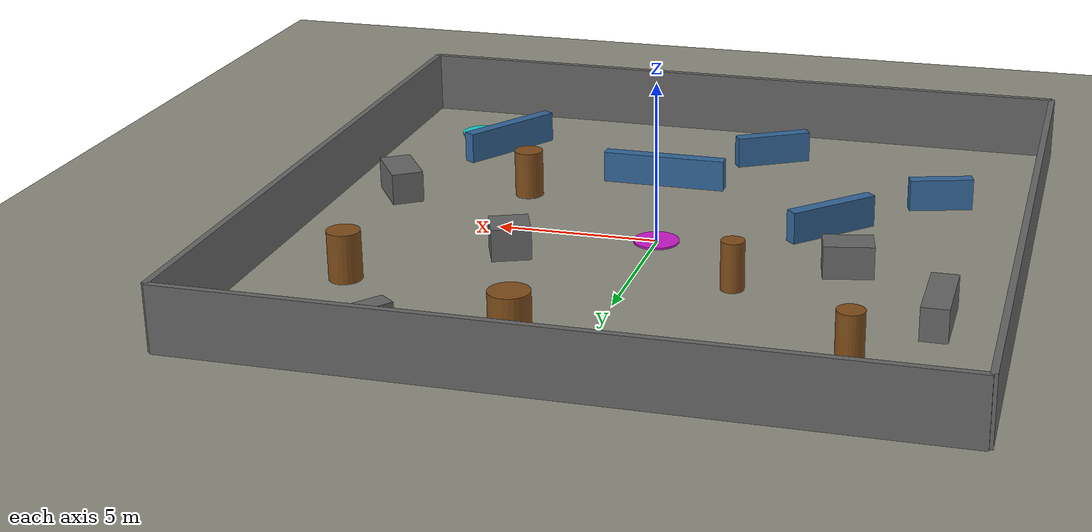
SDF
<?xml version="1.0" ?>
<sdf version="1.6">
  <world name="open_exploration">

    <physics name="default_physics" type="ode">
      <max_step_size>0.001</max_step_size>
      <real_time_factor>1</real_time_factor>
      <real_time_update_rate>1000</real_time_update_rate>
    </physics>

    <gravity>0 0 -9.8</gravity>

    <light name="sun" type="directional">
      <cast_shadows>true</cast_shadows>
      <pose>0 0 20 0 0 0</pose>
      <diffuse>0.85 0.85 0.85 1</diffuse>
      <specular>0.2 0.2 0.2 1</specular>
      <direction>-0.4 0.2 -0.9</direction>
    </light>

    <!-- Suelo -->
    <model name="ground_plane">
      <static>true</static>
      <link name="link">
        <collision name="collision">
          <geometry><plane><normal>0 0 1</normal><size>35 35</size></plane></geometry>
        </collision>
        <visual name="visual">
          <geometry><plane><normal>0 0 1</normal><size>35 35</size></plane></geometry>
          <material><ambient>0.55 0.55 0.5 1</ambient><diffuse>0.55 0.55 0.5 1</diffuse></material>
        </visual>
      </link>
    </model>

    <!-- PERÍMETRO EXTERIOR (22m x 22m)                                -->

    <model name="border_n"><static>true</static><pose>0 11 1 0 0 0</pose>
      <link name="link">
        <collision name="collision"><geometry><box><size>22 0.2 2</size></box></geometry></collision>
        <visual name="visual"><geometry><box><size>22 0.2 2</size></box></geometry>
          <material><ambient>0.4 0.4 0.4 1</ambient><diffuse>0.4 0.4 0.4 1</diffuse></material>
        </visual>
      </link>
    </model>
    <model name="border_s"><static>true</static><pose>0 -11 1 0 0 0</pose>
      <link name="link">
        <collision name="collision"><geometry><box><size>22 0.2 2</size></box></geometry></collision>
        <visual name="visual"><geometry><box><size>22 0.2 2</size></box></geometry>
          <material><ambient>0.4 0.4 0.4 1</ambient><diffuse>0.4 0.4 0.4 1</diffuse></material>
        </visual>
      </link>
    </model>
    <model name="border_e"><static>true</static><pose>11 0 1 0 0 0</pose>
      <link name="link">
        <collision name="collision"><geometry><box><size>0.2 22 2</size></box></geometry></collision>
        <visual name="visual"><geometry><box><size>0.2 22 2</size></box></geometry>
          <material><ambient>0.4 0.4 0.4 1</ambient><diffuse>0.4 0.4 0.4 1</diffuse></material>
        </visual>
      </link>
    </model>
    <model name="border_w"><static>true</static><pose>-11 0 1 0 0 0</pose>
      <link name="link">
        <collision name="collision"><geometry><box><size>0.2 22 2</size></box></geometry></collision>
        <visual name="visual"><geometry><box><size>0.2 22 2</size></box></geometry>
          <material><ambient>0.4 0.4 0.4 1</ambient><diffuse>0.4 0.4 0.4 1</diffuse></material>
        </visual>
      </link>
    </model>

    <!-- OBSTÁCULOS DISPERSOS (15 obstáculos variados)                 -->
    <!-- Mezcla de cilindros (columnas) y cajas (muros cortos)         -->

    <!-- Cilindros (columnas) -->
    <model name="cyl_1"><static>true</static><pose>-7 7 0.75 0 0 0</pose>
      <link name="link">
        <collision name="collision"><geometry><cylinder><radius>0.4</radius><length>1.5</length></cylinder></geometry></collision>
        <visual name="visual"><geometry><cylinder><radius>0.4</radius><length>1.5</length></cylinder></geometry>
          <material><ambient>0.5 0.3 0.1 1</ambient><diffuse>0.5 0.3 0.1 1</diffuse></material>
        </visual>
      </link>
    </model>

    <model name="cyl_2"><static>true</static><pose>2 8 0.75 0 0 0</pose>
      <link name="link">
        <collision name="collision"><geometry><cylinder><radius>0.6</radius><length>1.5</length></cylinder></geometry></collision>
        <visual name="visual"><geometry><cylinder><radius>0.6</radius><length>1.5</length></cylinder></geometry>
          <material><ambient>0.5 0.3 0.1 1</ambient><diffuse>0.5 0.3 0.1 1</diffuse></material>
        </visual>
      </link>
    </model>

    <model name="cyl_3"><static>true</static><pose>8 5 0.75 0 0 0</pose>
      <link name="link">
        <collision name="collision"><geometry><cylinder><radius>0.5</radius><length>1.5</length></cylinder></geometry></collision>
        <visual name="visual"><geometry><cylinder><radius>0.5</radius><length>1.5</length></cylinder></geometry>
          <material><ambient>0.5 0.3 0.1 1</ambient><diffuse>0.5 0.3 0.1 1</diffuse></material>
        </visual>
      </link>
    </model>

    <model name="cyl_4"><static>true</static><pose>-3 3 0.75 0 0 0</pose>
      <link name="link">
        <collision name="collision"><geometry><cylinder><radius>0.35</radius><length>1.5</length></cylinder></geometry></collision>
        <visual name="visual"><geometry><cylinder><radius>0.35</radius><length>1.5</length></cylinder></geometry>
          <material><ambient>0.5 0.3 0.1 1</ambient><diffuse>0.5 0.3 0.1 1</diffuse></material>
        </visual>
      </link>
    </model>

    <model name="cyl_5"><static>true</static><pose>5 -3 0.75 0 0 0</pose>
      <link name="link">
        <collision name="collision"><geometry><cylinder><radius>0.45</radius><length>1.5</length></cylinder></geometry></collision>
        <visual name="visual"><geometry><cylinder><radius>0.45</radius><length>1.5</length></cylinder></geometry>
          <material><ambient>0.5 0.3 0.1 1</ambient><diffuse>0.5 0.3 0.1 1</diffuse></material>
        </visual>
      </link>
    </model>

    <!-- Muros cortos (cajas alargadas en distintos ángulos) -->
    <model name="box_1"><static>true</static><pose>-5 -2 0.5 0 0 0.785</pose>
      <link name="link">
        <collision name="collision"><geometry><box><size>3 0.4 1</size></box></geometry></collision>
        <visual name="visual"><geometry><box><size>3 0.4 1</size></box></geometry>
          <material><ambient>0.2 0.4 0.6 1</ambient><diffuse>0.2 0.4 0.6 1</diffuse></material>
        </visual>
      </link>
    </model>

    <model name="box_2"><static>true</static><pose>1 -5 0.5 0 0 0</pose>
      <link name="link">
        <collision name="collision"><geometry><box><size>4 0.4 1</size></box></geometry></collision>
        <visual name="visual"><geometry><box><size>4 0.4 1</size></box></geometry>
          <material><ambient>0.2 0.4 0.6 1</ambient><diffuse>0.2 0.4 0.6 1</diffuse></material>
        </visual>
      </link>
    </model>

    <model name="box_3"><static>true</static><pose>-8 -5 0.5 0 0 0.3</pose>
      <link name="link">
        <collision name="collision"><geometry><box><size>2 0.4 1</size></box></geometry></collision>
        <visual name="visual"><geometry><box><size>2 0.4 1</size></box></geometry>
          <material><ambient>0.2 0.4 0.6 1</ambient><diffuse>0.2 0.4 0.6 1</diffuse></material>
        </visual>
      </link>
    </model>

    <model name="box_4"><static>true</static><pose>7 -7 0.5 0 0 1.0</pose>
      <link name="link">
        <collision name="collision"><geometry><box><size>3.5 0.4 1</size></box></geometry></collision>
        <visual name="visual"><geometry><box><size>3.5 0.4 1</size></box></geometry>
          <material><ambient>0.2 0.4 0.6 1</ambient><diffuse>0.2 0.4 0.6 1</diffuse></material>
        </visual>
      </link>
    </model>

    <model name="box_5"><static>true</static><pose>-2 -8 0.5 0 0 0.523</pose>
      <link name="link">
        <collision name="collision"><geometry><box><size>2.5 0.4 1</size></box></geometry></collision>
        <visual name="visual"><geometry><box><size>2.5 0.4 1</size></box></geometry>
          <material><ambient>0.2 0.4 0.6 1</ambient><diffuse>0.2 0.4 0.6 1</diffuse></material>
        </visual>
      </link>
    </model>

    <!-- Bloques cuadrados (obstacles tipo roca) -->
    <model name="block_1"><static>true</static><pose>4 2 0.5 0 0 0.4</pose>
      <link name="link">
        <collision name="collision"><geometry><box><size>1.2 1.2 1</size></box></geometry></collision>
        <visual name="visual"><geometry><box><size>1.2 1.2 1</size></box></geometry>
          <material><ambient>0.4 0.4 0.4 1</ambient><diffuse>0.4 0.4 0.4 1</diffuse></material>
        </visual>
      </link>
    </model>

    <model name="block_2"><static>true</static><pose>-6 1 0.5 0 0 0.2</pose>
      <link name="link">
        <collision name="collision"><geometry><box><size>1.5 1 1</size></box></geometry></collision>
        <visual name="visual"><geometry><box><size>1.5 1 1</size></box></geometry>
          <material><ambient>0.4 0.4 0.4 1</ambient><diffuse>0.4 0.4 0.4 1</diffuse></material>
        </visual>
      </link>
    </model>

    <model name="block_3"><static>true</static><pose>9 -2 0.5 0 0 0.6</pose>
      <link name="link">
        <collision name="collision"><geometry><box><size>1 1.8 1</size></box></geometry></collision>
        <visual name="visual"><geometry><box><size>1 1.8 1</size></box></geometry>
          <material><ambient>0.4 0.4 0.4 1</ambient><diffuse>0.4 0.4 0.4 1</diffuse></material>
        </visual>
      </link>
    </model>

    <model name="block_4"><static>true</static><pose>-9 4 0.5 0 0 0</pose>
      <link name="link">
        <collision name="collision"><geometry><box><size>0.8 2.5 1</size></box></geometry></collision>
        <visual name="visual"><geometry><box><size>0.8 2.5 1</size></box></geometry>
          <material><ambient>0.4 0.4 0.4 1</ambient><diffuse>0.4 0.4 0.4 1</diffuse></material>
        </visual>
      </link>
    </model>

    <model name="block_5"><static>true</static><pose>6 9 0.5 0 0 0.9</pose>
      <link name="link">
        <collision name="collision"><geometry><box><size>2 0.6 1</size></box></geometry></collision>
        <visual name="visual"><geometry><box><size>2 0.6 1</size></box></geometry>
          <material><ambient>0.4 0.4 0.4 1</ambient><diffuse>0.4 0.4 0.4 1</diffuse></material>
        </visual>
      </link>
    </model>

    <!-- ZONAS DE INTERÉS / REUNIÓN EPISTÉMICA (3 puntos)              -->
    <!-- Aquí los agentes se reencuentran y comparten mapa (DEL)       -->

    <!-- Punto de reunión 1 (Noroeste) - Azul -->
    <model name="meeting_point_1"><static>true</static><pose>-8.5 8.5 0.03 0 0 0</pose>
      <link name="link">
        <collision name="collision"><geometry><cylinder><radius>0.7</radius><length>0.06</length></cylinder></geometry></collision>
        <visual name="visual"><geometry><cylinder><radius>0.7</radius><length>0.06</length></cylinder></geometry>
          <material><ambient>0.1 0.3 0.9 1</ambient><diffuse>0.1 0.3 0.9 1</diffuse></material>
        </visual>
      </link>
    </model>

    <!-- Punto de reunión 2 (Centro) - Magenta -->
    <model name="meeting_point_2"><static>true</static><pose>0 0 0.03 0 0 0</pose>
      <link name="link">
        <collision name="collision"><geometry><cylinder><radius>0.7</radius><length>0.06</length></cylinder></geometry></collision>
        <visual name="visual"><geometry><cylinder><radius>0.7</radius><length>0.06</length></cylinder></geometry>
          <material><ambient>0.8 0.1 0.8 1</ambient><diffuse>0.8 0.1 0.8 1</diffuse></material>
        </visual>
      </link>
    </model>

    <!-- Punto de reunión 3 (Sureste) - Cian -->
    <model name="meeting_point_3"><static>true</static><pose>8.5 -8.5 0.03 0 0 0</pose>
      <link name="link">
        <collision name="collision"><geometry><cylinder><radius>0.7</radius><length>0.06</length></cylinder></geometry></collision>
        <visual name="visual"><geometry><cylinder><radius>0.7</radius><length>0.06</length></cylinder></geometry>
          <material><ambient>0.1 0.8 0.8 1</ambient><diffuse>0.1 0.8 0.8 1</diffuse></material>
        </visual>
      </link>
    </model>

    <!-- Spawn sugerido:                                                 -->
    <!-- Agente 1: pose="-10 -10 0.1 0 0 0"   (esquina Suroeste)       -->
    <!-- Agente 2: pose="-10  10 0.1 0 0 0"   (esquina Noroeste)       -->
    <!-- Objetivo: exploración total del mapa (100% celdas visitadas)   -->

  </world>
</sdf>
